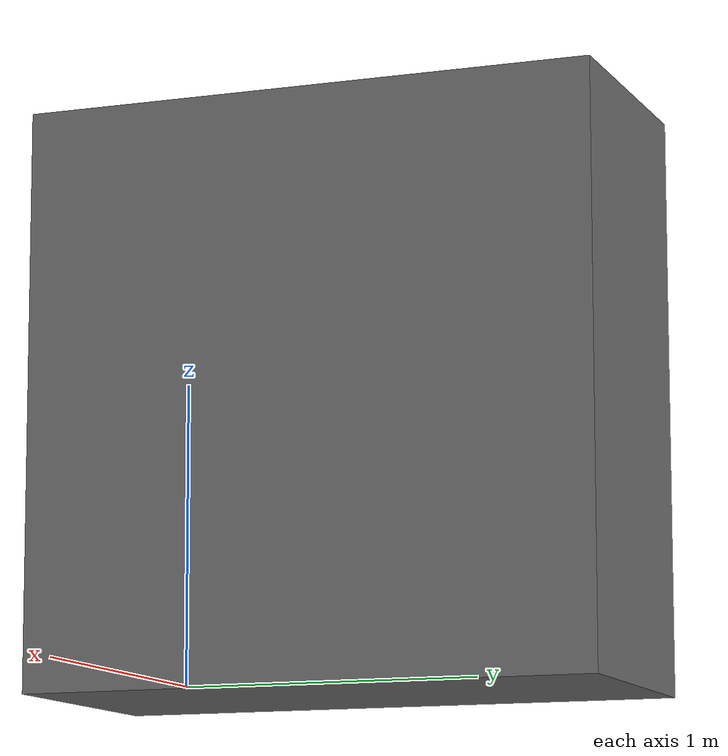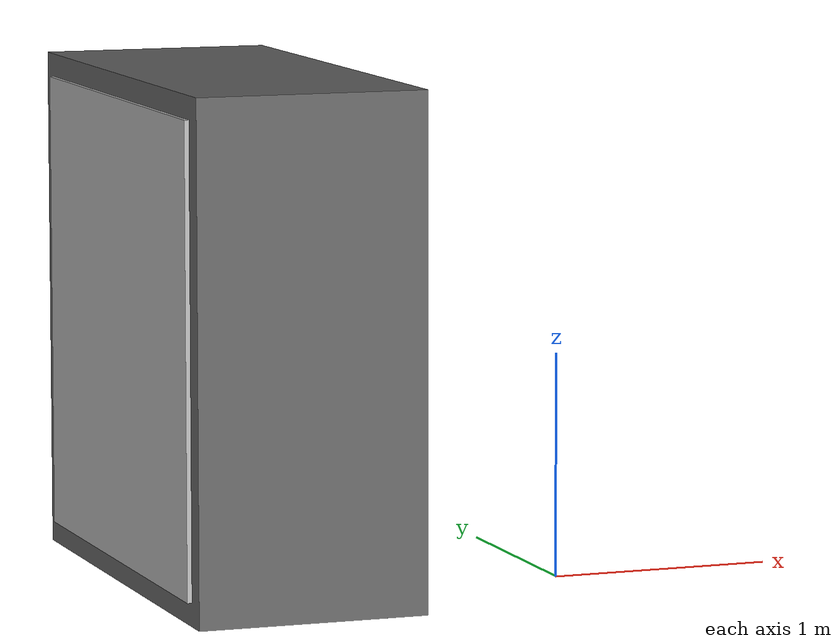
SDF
<?xml version="1.0"?>
<sdf version="1.5">
  <model name="aquabot_marker_6_KO">
    <static>true</static>
    <link name="link">
      <!-- QR Code basement-->
      <visual name="base">
        <pose>-1.5 0 1.2 0 0 0</pose>
        <geometry>
          <box>
            <size>1 2.2 2.2</size>
          </box>
        </geometry>
        <material> <!-- base material -->
          <ambient>0.8 0.8 0.8 1</ambient>
          <diffuse>0.4 0.4 0.4 1</diffuse>
          <specular>0.6 0.6 0.6 1</specular>
          <emissive>0 0 0 1</emissive>
        </material>
      </visual>
      <collision name="collision_base">
        <pose>-1.5 0 1.2 0 0 0</pose>
        <geometry>
          <box>
            <size>1 2.2 2.2</size>
          </box>
        </geometry>
        <material> <!-- base material -->
          <ambient>0.8 0.8 0.8 1</ambient>
          <diffuse>0.4 0.4 0.4 1</diffuse>
          <specular>0.6 0.6 0.6 1</specular>
          <emissive>0 0 0 1</emissive>
        </material>
      </collision>
      <!-- QRCode-->
      <visual name="visual">
        <pose>-2 0 0.2 0 0 0</pose>
        <geometry>
          <mesh>
            <scale>4 4 4</scale>
            <uri>meshes/Marker0.dae</uri>
          </mesh>
        </geometry>
      </visual>
    </link>
  </model>
</sdf>
